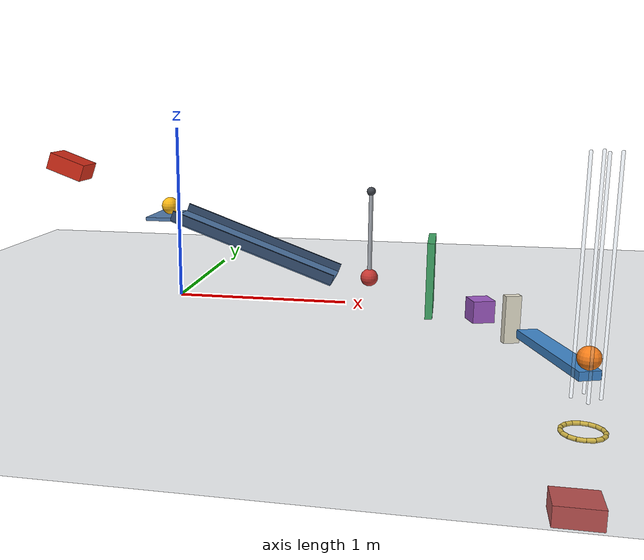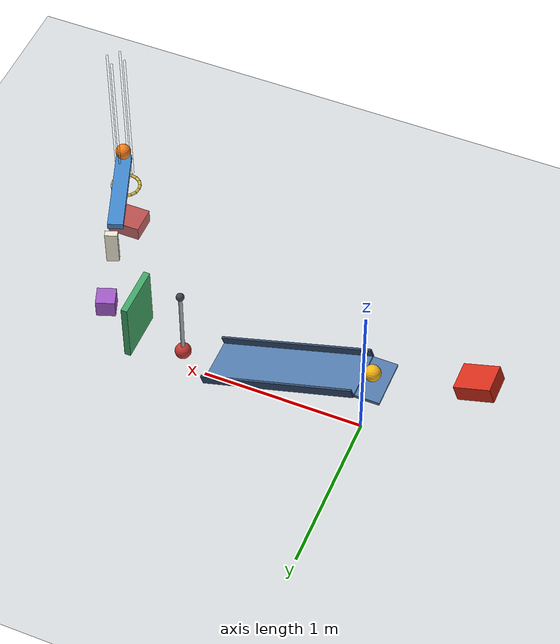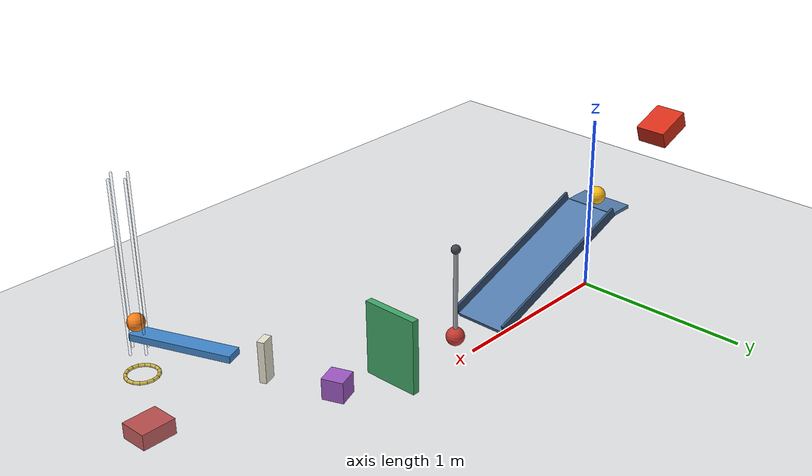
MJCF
<mujoco model="corrected_chain_with_powered_assists">
  <compiler angle="degree" autolimits="true"/>
  <option timestep="0.002" gravity="0 0 -9.81" integrator="implicitfast" solver="Newton" iterations="100" tolerance="1e-10"/>
  <size njmax="5000" nconmax="1000"/>
  <visual>
    <global azimuth="135" elevation="-20"/>
    <quality shadowsize="2048"/>
  </visual>

  <!-- Restitution 0.05 is approximated by a soft-contact damping ratio of 0.69. -->
  <!-- Collision filtering represents an open well beneath the lever and catcher. -->
  <!-- Powered assists have zero force at their undisplaced reference configurations. -->
  <!-- This file has not been simulation-validated. -->

  <worldbody>
    <light name="main_light" pos="0 -3 5" dir="0 0 -1" diffuse="0.8 0.8 0.8"/>
    <light name="fill_light" pos="4 3 3" dir="-1 -1 -1" diffuse="0.4 0.4 0.4"/>
    <camera name="overview" pos="4.5 -5 3" xyaxes="0.7809 0.6247 0 -0.2714 0.3393 0.9006"/>

    <geom name="floor" type="plane" pos="0 0 0" size="5 4 0.1" contype="1" conaffinity="1" condim="6" friction="0.68 0.005 0.0015" solref="0.006 0.69" solimp="0.95 0.99 0.001" rgba="0.55 0.59 0.62 0.28"/>

    <!-- The front-face-to-ball clearance is 0.50 m measured along cart1's slide axis. -->
    <body name="cart1" pos="-0.67519713 0 0.76775344" quat="0.984807753 0 0.173648178 0">
      <joint name="cart1_slide" type="slide" axis="1 0 0" damping="0.20" limited="true" range="0 0.57" solreflimit="0.004 1"/>
      <geom name="cart1_chassis" type="box" size="0.11 0.09 0.05" mass="0.50" contype="1" conaffinity="1" condim="6" friction="0.68 0.005 0.0015" solref="0.006 0.69" solimp="0.95 0.99 0.001" rgba="0.85 0.18 0.10 1"/>
    </body>

    <!-- Main ramp: 1.00 m by 0.30 m, inclined 20 degrees, low surface edge at z=0.15. -->
    <!-- The staging shelf keeps ball1 initially stationary until cart1 arrives. -->
    <body name="ramp1" pos="0.46984631 0 0.32101007" quat="0.984807753 0 0.173648178 0">
      <geom name="ramp1_surface" type="box" pos="0 0 -0.01" size="0.50 0.15 0.01" contype="1" conaffinity="1" condim="6" friction="0.68 0.005 0.0015" solref="0.006 0.69" solimp="0.95 0.99 0.001" rgba="0.32 0.48 0.67 1"/>
      <geom name="ramp1_staging_shelf" type="box" pos="-0.571746 0 -0.036752" quat="0.984807753 0 -0.173648178 0" size="0.075 0.15 0.01" contype="1" conaffinity="1" condim="6" friction="0.68 0.005 0.0015" solref="0.006 0.69" solimp="0.95 0.99 0.001" rgba="0.32 0.48 0.67 1"/>
      <geom name="ramp1_left_rail" type="box" pos="0 -0.157 0.018" size="0.50 0.007 0.028" contype="1" conaffinity="1" condim="3" friction="0.68 0.005 0.0015" solref="0.006 0.69" solimp="0.95 0.99 0.001" rgba="0.20 0.30 0.43 1"/>
      <geom name="ramp1_right_rail" type="box" pos="0 0.157 0.018" size="0.50 0.007 0.028" contype="1" conaffinity="1" condim="3" friction="0.68 0.005 0.0015" solref="0.006 0.69" solimp="0.95 0.99 0.001" rgba="0.20 0.30 0.43 1"/>
    </body>

    <body name="ball1" pos="-0.055 0 0.54202014">
      <freejoint name="ball1_free"/>
      <geom name="ball1_sphere" type="sphere" size="0.05" mass="0.20" contype="1" conaffinity="1" condim="6" friction="0.68 0.005 0.0015" solref="0.006 0.69" solimp="0.95 0.99 0.001" rgba="0.98 0.72 0.08 1"/>
    </body>

    <!-- Pendulum length is measured from the hinge to the bob center. -->
    <!-- Its initial near bob surface is 0.10 m beyond the ramp's low edge. -->
    <!-- Positive joint motion takes the bob toward +x and upward. -->
    <body name="pendulum1" pos="1.13969262 0 0.657">
      <joint name="pendulum1_hinge" type="hinge" axis="0 -1 0" damping="0.04" limited="true" range="0 40" solreflimit="0.003 1"/>
      <geom name="pendulum1_rod" type="capsule" fromto="0 0 0 0 0 -0.50" size="0.012" mass="0.04" contype="1" conaffinity="1" condim="3" friction="0.68 0.005 0.0015" solref="0.006 0.69" solimp="0.95 0.99 0.001" rgba="0.65 0.67 0.70 1"/>
      <geom name="pendulum1_bob" type="sphere" pos="0 0 -0.50" size="0.05" mass="0.30" contype="1" conaffinity="1" condim="6" friction="0.68 0.005 0.0015" solref="0.006 0.69" solimp="0.95 0.99 0.001" rgba="0.78 0.22 0.20 1"/>
      <geom name="pendulum1_hub" type="sphere" size="0.025" mass="0.01" contype="0" conaffinity="0" rgba="0.25 0.27 0.30 1"/>
    </body>

    <!-- Door: 0.42 m high, 0.32 m wide, 0.04 m thick, hinged about vertical z. -->
    <!-- Negative rotation is clockwise from above; the stop is at -70 degrees. -->
    <body name="door1" pos="1.491 -0.270 0.210">
      <joint name="door1_hinge" type="hinge" axis="0 0 1" damping="0.04" limited="true" range="-70 0" solreflimit="0.003 1"/>
      <geom name="door1_panel" type="box" pos="0 0.16 0" size="0.02 0.16 0.21" mass="0.45" contype="1" conaffinity="1" condim="6" friction="0.68 0.005 0.0015" solref="0.006 0.69" solimp="0.95 0.99 0.001" rgba="0.25 0.65 0.40 1"/>
    </body>

    <!-- A prismatic mount prevents block1 from tipping while retaining its required freejoint. -->
    <!-- The cube remains in frictional contact with the floor. -->
    <body name="block1_driver" pos="1.763528116 -0.229337656 0.060">
      <inertial pos="0 0 0" mass="0.001" diaginertia="0.000001 0.000001 0.000001"/>
      <joint name="block1_driver_slide" type="slide" axis="0.342020143 -0.939692621 0" damping="0.20" limited="true" range="0 0.32" solreflimit="0.002 1"/>
    </body>

    <body name="block1" pos="1.763528116 -0.229337656 0.060" quat="0.819152044 0 0 -0.573576436">
      <freejoint name="block1_free"/>
      <geom name="block1_cube" type="box" size="0.06 0.06 0.06" mass="0.35" contype="1" conaffinity="1" condim="6" friction="0.68 0.005 0.0015" solref="0.006 0.69" solimp="0.95 0.99 0.001" rgba="0.62 0.35 0.77 1"/>
    </body>

    <!-- Block1's forward face reaches domino1 after 0.32 m of guided translation. -->
    <body name="domino1" pos="1.900336173 -0.605214704 0.120" quat="0.819152044 0 0 -0.573576436">
      <freejoint name="domino1_free"/>
      <geom name="domino1_slab" type="box" size="0.02 0.04 0.12" mass="0.25" contype="4" conaffinity="3" condim="6" friction="0.68 0.005 0.0015" solref="0.006 0.69" solimp="0.95 0.99 0.001" rgba="0.92 0.90 0.82 1"/>
    </body>

    <!-- The left tip is 0.18 m beyond domino1's initial center along the chain direction. -->
    <!-- The lower stop holds the initial horizontal lever against ball2's weight. -->
    <!-- Group 2 contacts ball2 and domino1, but not the floor or vertical guide. -->
    <body name="lever1" pos="2.064505841 -1.056267162 0.100" quat="0.819152044 0 0 -0.573576436">
      <joint name="lever1_hinge" type="hinge" axis="0 -1 0" damping="0.04" limited="true" range="0 45" solreflimit="0.003 1"/>
      <geom name="lever1_beam" type="box" size="0.30 0.05 0.02" mass="0.50" contype="2" conaffinity="20" condim="6" friction="0.68 0.005 0.0015" solref="0.006 0.69" solimp="0.95 0.99 0.001" rgba="0.25 0.53 0.80 1"/>
    </body>

    <body name="ball2" pos="2.160271481 -1.319381096 0.170">
      <freejoint name="ball2_free"/>
      <geom name="ball2_sphere" type="sphere" size="0.05" mass="0.20" contype="16" conaffinity="34" condim="6" friction="0.68 0.005 0.0015" solref="0.006 0.69" solimp="0.95 0.99 0.001" rgba="0.98 0.50 0.10 1"/>
    </body>

    <!-- Guide group 32 contacts only ball2; it cannot pin lever1. -->
    <!-- The guide constrains horizontal excursion while allowing upward launch and downward fall. -->
    <body name="ball2_guide" pos="2.160271481 -1.319381096 0">
      <geom name="ball2_guide_positive_x" type="capsule" fromto="0.059 0 -0.46 0.059 0 1.00" size="0.007" contype="32" conaffinity="16" condim="3" friction="0.68 0.005 0.0015" solref="0.006 0.69" solimp="0.95 0.99 0.001" rgba="0.65 0.75 0.85 0.22"/>
      <geom name="ball2_guide_negative_x" type="capsule" fromto="-0.059 0 -0.46 -0.059 0 1.00" size="0.007" contype="32" conaffinity="16" condim="3" friction="0.68 0.005 0.0015" solref="0.006 0.69" solimp="0.95 0.99 0.001" rgba="0.65 0.75 0.85 0.22"/>
      <geom name="ball2_guide_positive_y" type="capsule" fromto="0 0.059 -0.46 0 0.059 1.00" size="0.007" contype="32" conaffinity="16" condim="3" friction="0.68 0.005 0.0015" solref="0.006 0.69" solimp="0.95 0.99 0.001" rgba="0.65 0.75 0.85 0.22"/>
      <geom name="ball2_guide_negative_y" type="capsule" fromto="0 -0.059 -0.46 0 -0.059 1.00" size="0.007" contype="32" conaffinity="16" condim="3" friction="0.68 0.005 0.0015" solref="0.006 0.69" solimp="0.95 0.99 0.001" rgba="0.65 0.75 0.85 0.22"/>
    </body>

    <!-- Horizontal polygonal ring with approximately 0.16 m minimum clear diameter. -->
    <!-- Its center is vertically 0.32 m below ball2's initial center. -->
    <body name="ring1" pos="2.160271481 -1.319381096 -0.150">
      <geom name="ring1_segment_00" type="capsule" fromto="0.091763 0 0 0.084778 0.035116 0" size="0.01" contype="2" conaffinity="16" condim="3" friction="0.68 0.005 0.0015" solref="0.006 0.69" solimp="0.95 0.99 0.001" rgba="0.95 0.78 0.15 1"/>
      <geom name="ring1_segment_01" type="capsule" fromto="0.084778 0.035116 0 0.064887 0.064887 0" size="0.01" contype="2" conaffinity="16" condim="3" friction="0.68 0.005 0.0015" solref="0.006 0.69" solimp="0.95 0.99 0.001" rgba="0.95 0.78 0.15 1"/>
      <geom name="ring1_segment_02" type="capsule" fromto="0.064887 0.064887 0 0.035116 0.084778 0" size="0.01" contype="2" conaffinity="16" condim="3" friction="0.68 0.005 0.0015" solref="0.006 0.69" solimp="0.95 0.99 0.001" rgba="0.95 0.78 0.15 1"/>
      <geom name="ring1_segment_03" type="capsule" fromto="0.035116 0.084778 0 0 0.091763 0" size="0.01" contype="2" conaffinity="16" condim="3" friction="0.68 0.005 0.0015" solref="0.006 0.69" solimp="0.95 0.99 0.001" rgba="0.95 0.78 0.15 1"/>
      <geom name="ring1_segment_04" type="capsule" fromto="0 0.091763 0 -0.035116 0.084778 0" size="0.01" contype="2" conaffinity="16" condim="3" friction="0.68 0.005 0.0015" solref="0.006 0.69" solimp="0.95 0.99 0.001" rgba="0.95 0.78 0.15 1"/>
      <geom name="ring1_segment_05" type="capsule" fromto="-0.035116 0.084778 0 -0.064887 0.064887 0" size="0.01" contype="2" conaffinity="16" condim="3" friction="0.68 0.005 0.0015" solref="0.006 0.69" solimp="0.95 0.99 0.001" rgba="0.95 0.78 0.15 1"/>
      <geom name="ring1_segment_06" type="capsule" fromto="-0.064887 0.064887 0 -0.084778 0.035116 0" size="0.01" contype="2" conaffinity="16" condim="3" friction="0.68 0.005 0.0015" solref="0.006 0.69" solimp="0.95 0.99 0.001" rgba="0.95 0.78 0.15 1"/>
      <geom name="ring1_segment_07" type="capsule" fromto="-0.084778 0.035116 0 -0.091763 0 0" size="0.01" contype="2" conaffinity="16" condim="3" friction="0.68 0.005 0.0015" solref="0.006 0.69" solimp="0.95 0.99 0.001" rgba="0.95 0.78 0.15 1"/>
      <geom name="ring1_segment_08" type="capsule" fromto="-0.091763 0 0 -0.084778 -0.035116 0" size="0.01" contype="2" conaffinity="16" condim="3" friction="0.68 0.005 0.0015" solref="0.006 0.69" solimp="0.95 0.99 0.001" rgba="0.95 0.78 0.15 1"/>
      <geom name="ring1_segment_09" type="capsule" fromto="-0.084778 -0.035116 0 -0.064887 -0.064887 0" size="0.01" contype="2" conaffinity="16" condim="3" friction="0.68 0.005 0.0015" solref="0.006 0.69" solimp="0.95 0.99 0.001" rgba="0.95 0.78 0.15 1"/>
      <geom name="ring1_segment_10" type="capsule" fromto="-0.064887 -0.064887 0 -0.035116 -0.084778 0" size="0.01" contype="2" conaffinity="16" condim="3" friction="0.68 0.005 0.0015" solref="0.006 0.69" solimp="0.95 0.99 0.001" rgba="0.95 0.78 0.15 1"/>
      <geom name="ring1_segment_11" type="capsule" fromto="-0.035116 -0.084778 0 0 -0.091763 0" size="0.01" contype="2" conaffinity="16" condim="3" friction="0.68 0.005 0.0015" solref="0.006 0.69" solimp="0.95 0.99 0.001" rgba="0.95 0.78 0.15 1"/>
      <geom name="ring1_segment_12" type="capsule" fromto="0 -0.091763 0 0.035116 -0.084778 0" size="0.01" contype="2" conaffinity="16" condim="3" friction="0.68 0.005 0.0015" solref="0.006 0.69" solimp="0.95 0.99 0.001" rgba="0.95 0.78 0.15 1"/>
      <geom name="ring1_segment_13" type="capsule" fromto="0.035116 -0.084778 0 0.064887 -0.064887 0" size="0.01" contype="2" conaffinity="16" condim="3" friction="0.68 0.005 0.0015" solref="0.006 0.69" solimp="0.95 0.99 0.001" rgba="0.95 0.78 0.15 1"/>
      <geom name="ring1_segment_14" type="capsule" fromto="0.064887 -0.064887 0 0.084778 -0.035116 0" size="0.01" contype="2" conaffinity="16" condim="3" friction="0.68 0.005 0.0015" solref="0.006 0.69" solimp="0.95 0.99 0.001" rgba="0.95 0.78 0.15 1"/>
      <geom name="ring1_segment_15" type="capsule" fromto="0.084778 -0.035116 0 0.091763 0 0" size="0.01" contype="2" conaffinity="16" condim="3" friction="0.68 0.005 0.0015" solref="0.006 0.69" solimp="0.95 0.99 0.001" rgba="0.95 0.78 0.15 1"/>
    </body>

    <!-- Deck z=-0.45 gives ball-center contact at z=-0.40, 0.25 m below ring center. -->
    <body name="cart2" pos="2.160271481 -1.319381096 -0.500">
      <joint name="cart2_slide" type="slide" axis="1 0 0" damping="0.20" limited="true" range="-0.10 0.10" solreflimit="0.004 1"/>
      <geom name="cart2_chassis" type="box" size="0.11 0.09 0.05" mass="0.50" contype="2" conaffinity="16" condim="6" friction="0.68 0.005 0.0015" solref="0.006 0.69" solimp="0.95 0.99 0.001" rgba="0.80 0.20 0.18 1"/>
    </body>
  </worldbody>

  <!-- Unilateral compression spring: initial compression 0.20 m, stiffness 18 N/m. -->
  <tendon>
    <fixed name="cart1_axial_spring" stiffness="18" damping="0" springlength="0.20 1.00">
      <joint joint="cart1_slide" coef="1"/>
    </fixed>
  </tendon>

  <equality>
    <weld name="block1_prismatic_mount" body1="block1" body2="block1_driver" solref="0.002 1" solimp="0.99 0.999 0.0001"/>
  </equality>

  <!-- Affine bias creates bounded displacement-dependent assist with velocity feedback. -->
  <!-- These are powered assists, not additional passive springs. -->
  <actuator>
    <general name="pendulum1_assist" joint="pendulum1_hinge" gear="1" gaintype="fixed" gainprm="0" biastype="affine" biasprm="0 4 -0.08" forcelimited="true" forcerange="-2 2"/>
    <general name="door1_assist" joint="door1_hinge" gear="1" gaintype="fixed" gainprm="0" biastype="affine" biasprm="0 2 -0.25" forcelimited="true" forcerange="-0.6 0.6"/>
    <general name="block1_assist" joint="block1_driver_slide" gear="1" gaintype="fixed" gainprm="0" biastype="affine" biasprm="0 200 0" forcelimited="true" forcerange="-3 3"/>
    <general name="lever1_assist" joint="lever1_hinge" gear="1" gaintype="fixed" gainprm="0" biastype="affine" biasprm="0 12 -0.25" forcelimited="true" forcerange="-2 2"/>
  </actuator>

  <!-- Omitted qpos uses the reference configuration; omitted qvel initializes every body at rest. -->
  <keyframe>
    <key name="start" time="0" ctrl="0 0 0 0"/>
  </keyframe>
</mujoco>
